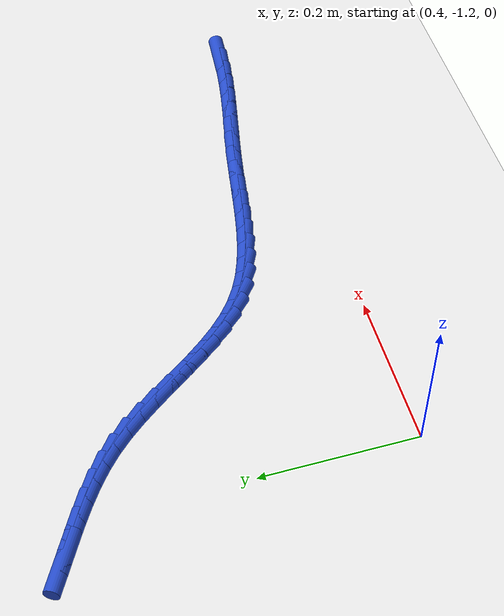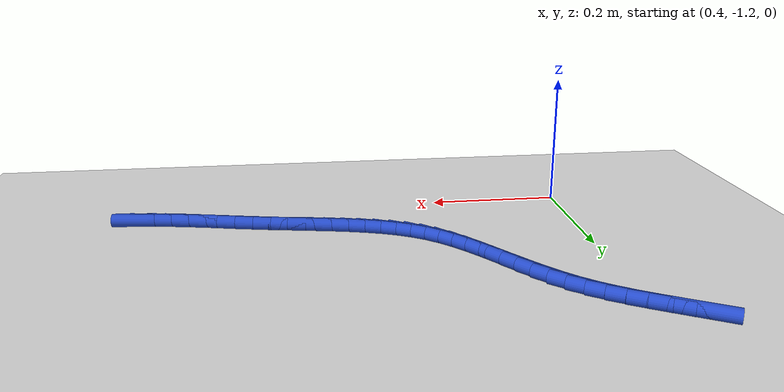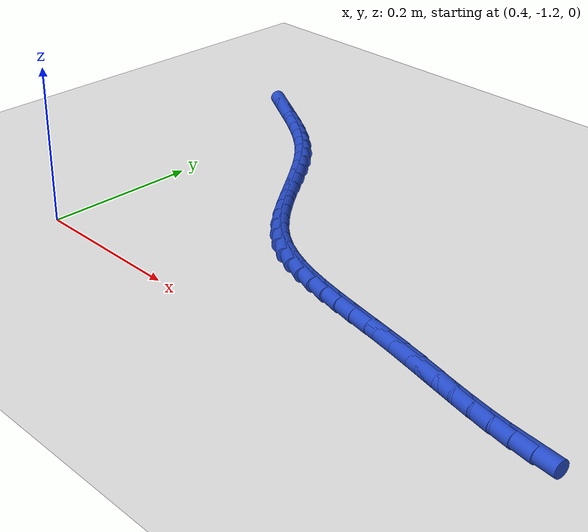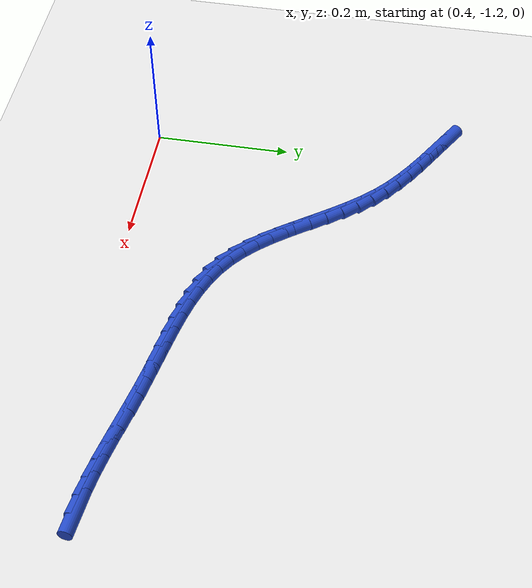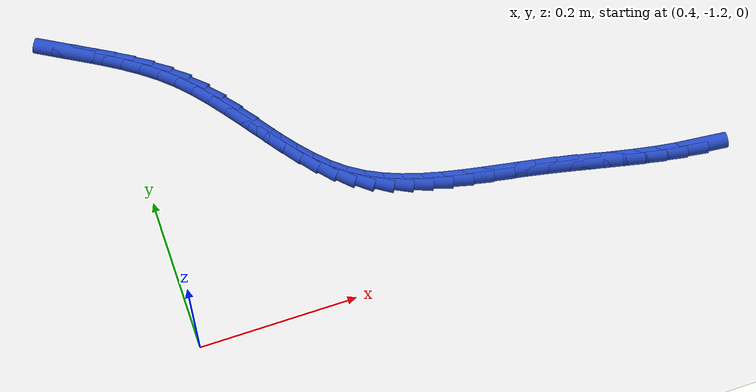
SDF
<sdf version="1.6">
 <world name="default">
  <model name="ground_plane">
   <static>1</static>
   <link name="link">
    <collision name="collision">
     <geometry><plane><normal>0 0 1</normal><size>100 100</size></plane></geometry>
     <surface><friction><ode><mu>100</mu><mu2>50</mu2></ode></friction></surface>
    </collision>
    <visual name="visual">
     <cast_shadows>0</cast_shadows>
     <geometry><plane><normal>0 0 1</normal><size>100 100</size></plane></geometry>
     <material>
      <script><uri>file://media/materials/scripts/gazebo.material</uri><name>Gazebo/WhiteGlow</name></script>
     </material>
    </visual>
   </link>
  </model>
  <model name="line">
   <link name="link_202">
    <pose>1.064997203295246 -1.1486702254336056 0.01 0 1.57 -0.09997851817522463</pose>
    <collision name="collision">
     <geometry><cylinder><radius>0.01</radius><length>0.08</length></cylinder></geometry>
    </collision>
    <visual name="visual">
     <material>
      <script><name>Gazebo/Blue</name><uri>file://media/materials/scripts/gazebo.material</uri></script>
     </material>
     <geometry><cylinder><radius>0.01</radius><length>0.08</length></cylinder></geometry>
    </visual>
   </link>
   <link name="link_203">
    <pose>1.0393894559686363 -1.1461014361405804 0.01 0 1.57 -0.14786104975516057</pose>
    <collision name="collision">
     <geometry><cylinder><radius>0.01</radius><length>0.08</length></cylinder></geometry>
    </collision>
    <visual name="visual">
     <material>
      <script><name>Gazebo/Blue</name><uri>file://media/materials/scripts/gazebo.material</uri></script>
     </material>
     <geometry><cylinder><radius>0.01</radius><length>0.08</length></cylinder></geometry>
    </visual>
   </link>
   <link name="link_204">
    <pose>1.0132505481544405 -1.1422080951218512 0.01 0 1.57 -0.18242461845466035</pose>
    <collision name="collision">
     <geometry><cylinder><radius>0.01</radius><length>0.08</length></cylinder></geometry>
    </collision>
    <visual name="visual">
     <material>
      <script><name>Gazebo/Blue</name><uri>file://media/materials/scripts/gazebo.material</uri></script>
     </material>
     <geometry><cylinder><radius>0.01</radius><length>0.08</length></cylinder></geometry>
    </visual>
   </link>
   <link name="link_205">
    <pose>0.9866940864905475 -1.1373090774031105 0.01 0 1.57 -0.20503501670263202</pose>
    <collision name="collision">
     <geometry><cylinder><radius>0.01</radius><length>0.08</length></cylinder></geometry>
    </collision>
    <visual name="visual">
     <material>
      <script><name>Gazebo/Blue</name><uri>file://media/materials/scripts/gazebo.material</uri></script>
     </material>
     <geometry><cylinder><radius>0.01</radius><length>0.08</length></cylinder></geometry>
    </visual>
   </link>
   <link name="link_206">
    <pose>0.9598336776148471 -1.1317232580100511 0.01 0 1.57 -0.21664131733712658</pose>
    <collision name="collision">
     <geometry><cylinder><radius>0.01</radius><length>0.08</length></cylinder></geometry>
    </collision>
    <visual name="visual">
     <material>
      <script><name>Gazebo/Blue</name><uri>file://media/materials/scripts/gazebo.material</uri></script>
     </material>
     <geometry><cylinder><radius>0.01</radius><length>0.08</length></cylinder></geometry>
    </visual>
   </link>
   <link name="link_207">
    <pose>0.9327829281652276 -1.125769511968366 0.01 0 1.57 -0.217771873512077</pose>
    <collision name="collision">
     <geometry><cylinder><radius>0.01</radius><length>0.08</length></cylinder></geometry>
    </collision>
    <visual name="visual">
     <material>
      <script><name>Gazebo/Blue</name><uri>file://media/materials/scripts/gazebo.material</uri></script>
     </material>
     <geometry><cylinder><radius>0.01</radius><length>0.08</length></cylinder></geometry>
    </visual>
   </link>
   <link name="link_208">
    <pose>0.905655444779579 -1.119766714303747 0.01 0 1.57 -0.2085453557223308</pose>
    <collision name="collision">
     <geometry><cylinder><radius>0.01</radius><length>0.08</length></cylinder></geometry>
    </collision>
    <visual name="visual">
     <material>
      <script><name>Gazebo/Blue</name><uri>file://media/materials/scripts/gazebo.material</uri></script>
     </material>
     <geometry><cylinder><radius>0.01</radius><length>0.08</length></cylinder></geometry>
    </visual>
   </link>
   <link name="link_209">
    <pose>0.87856483409579 -1.1140337400418878 0.01 0 1.57 -0.19044571846766364</pose>
    <collision name="collision">
     <geometry><cylinder><radius>0.01</radius><length>0.08</length></cylinder></geometry>
    </collision>
    <visual name="visual">
     <material>
      <script><name>Gazebo/Blue</name><uri>file://media/materials/scripts/gazebo.material</uri></script>
     </material>
     <geometry><cylinder><radius>0.01</radius><length>0.08</length></cylinder></geometry>
    </visual>
   </link>
   <link name="link_210">
    <pose>0.8516263802802777 -1.1088404888448071 0.01 0 1.57 -0.177304961467923</pose>
    <collision name="collision">
     <geometry><cylinder><radius>0.01</radius><length>0.08</length></cylinder></geometry>
    </collision>
    <visual name="visual">
     <material>
      <script><name>Gazebo/Blue</name><uri>file://media/materials/scripts/gazebo.material</uri></script>
     </material>
     <geometry><cylinder><radius>0.01</radius><length>0.08</length></cylinder></geometry>
    </visual>
   </link>
   <link name="link_211">
    <pose>0.8249688303572514 -1.1040638128967928 0.01 0 1.57 -0.17620624275474675</pose>
    <collision name="collision">
     <geometry><cylinder><radius>0.01</radius><length>0.08</length></cylinder></geometry>
    </collision>
    <visual name="visual">
     <material>
      <script><name>Gazebo/Blue</name><uri>file://media/materials/scripts/gazebo.material</uri></script>
     </material>
     <geometry><cylinder><radius>0.01</radius><length>0.08</length></cylinder></geometry>
    </visual>
   </link>
   <link name="link_212">
    <pose>0.7987274088737338 -1.0993914534191045 0.01 0 1.57 -0.18777712558698403</pose>
    <collision name="collision">
     <geometry><cylinder><radius>0.01</radius><length>0.08</length></cylinder></geometry>
    </collision>
    <visual name="visual">
     <material>
      <script><name>Gazebo/Blue</name><uri>file://media/materials/scripts/gazebo.material</uri></script>
     </material>
     <geometry><cylinder><radius>0.01</radius><length>0.08</length></cylinder></geometry>
    </visual>
   </link>
   <link name="link_213">
    <pose>0.7730373817332021 -1.0945099442332067 0.01 0 1.57 -0.21286161401542328</pose>
    <collision name="collision">
     <geometry><cylinder><radius>0.01</radius><length>0.08</length></cylinder></geometry>
    </collision>
    <visual name="visual">
     <material>
      <script><name>Gazebo/Blue</name><uri>file://media/materials/scripts/gazebo.material</uri></script>
     </material>
     <geometry><cylinder><radius>0.01</radius><length>0.08</length></cylinder></geometry>
    </visual>
   </link>
   <link name="link_214">
    <pose>0.7480340148391379 -1.089105819160567 0.01 0 1.57 -0.2525478913105486</pose>
    <collision name="collision">
     <geometry><cylinder><radius>0.01</radius><length>0.08</length></cylinder></geometry>
    </collision>
    <visual name="visual">
     <material>
      <script><name>Gazebo/Blue</name><uri>file://media/materials/scripts/gazebo.material</uri></script>
     </material>
     <geometry><cylinder><radius>0.01</radius><length>0.08</length></cylinder></geometry>
    </visual>
   </link>
   <link name="link_215">
    <pose>0.7238525740950195 -1.0828656120226494 0.01 0 1.57 -0.30806144975431227</pose>
    <collision name="collision">
     <geometry><cylinder><radius>0.01</radius><length>0.08</length></cylinder></geometry>
    </collision>
    <visual name="visual">
     <material>
      <script><name>Gazebo/Blue</name><uri>file://media/materials/scripts/gazebo.material</uri></script>
     </material>
     <geometry><cylinder><radius>0.01</radius><length>0.08</length></cylinder></geometry>
    </visual>
   </link>
   <link name="link_216">
    <pose>0.7006283254043254 -1.0754758566409208 0.01 0 1.57 -0.3805084614332146</pose>
    <collision name="collision">
     <geometry><cylinder><radius>0.01</radius><length>0.08</length></cylinder></geometry>
    </collision>
    <visual name="visual">
     <material>
      <script><name>Gazebo/Blue</name><uri>file://media/materials/scripts/gazebo.material</uri></script>
     </material>
     <geometry><cylinder><radius>0.01</radius><length>0.08</length></cylinder></geometry>
    </visual>
   </link>
   <link name="link_217">
    <pose>0.6784965346705366 -1.0666230868368474 0.01 0 1.57 -0.47040669023186193</pose>
    <collision name="collision">
     <geometry><cylinder><radius>0.01</radius><length>0.08</length></cylinder></geometry>
    </collision>
    <visual name="visual">
     <material>
      <script><name>Gazebo/Blue</name><uri>file://media/materials/scripts/gazebo.material</uri></script>
     </material>
     <geometry><cylinder><radius>0.01</radius><length>0.08</length></cylinder></geometry>
    </visual>
   </link>
   <link name="link_218">
    <pose>0.6575924677971309 -1.0559938364318937 0.01 0 1.57 -0.5770044176378986</pose>
    <collision name="collision">
     <geometry><cylinder><radius>0.01</radius><length>0.08</length></cylinder></geometry>
    </collision>
    <visual name="visual">
     <material>
      <script><name>Gazebo/Blue</name><uri>file://media/materials/scripts/gazebo.material</uri></script>
     </material>
     <geometry><cylinder><radius>0.01</radius><length>0.08</length></cylinder></geometry>
    </visual>
   </link>
   <link name="link_219">
    <pose>0.6380513906875891 -1.0432746392475274 0.01 0 1.57 -0.6918846311198411</pose>
    <collision name="collision">
     <geometry><cylinder><radius>0.01</radius><length>0.08</length></cylinder></geometry>
    </collision>
    <visual name="visual">
     <material>
      <script><name>Gazebo/Blue</name><uri>file://media/materials/scripts/gazebo.material</uri></script>
     </material>
     <geometry><cylinder><radius>0.01</radius><length>0.08</length></cylinder></geometry>
    </visual>
   </link>
   <link name="link_220">
    <pose>0.6199400557800224 -1.0282692271503657 0.01 0 1.57 -0.7888264944657875</pose>
    <collision name="collision">
     <geometry><cylinder><radius>0.01</radius><length>0.08</length></cylinder></geometry>
    </collision>
    <visual name="visual">
     <material>
      <script><name>Gazebo/Blue</name><uri>file://media/materials/scripts/gazebo.material</uri></script>
     </material>
     <geometry><cylinder><radius>0.01</radius><length>0.08</length></cylinder></geometry>
    </visual>
   </link>
   <link name="link_221">
    <pose>0.6030460066379327 -1.0112589422712088 0.01 0 1.57 -0.86195177397004</pose>
    <collision name="collision">
     <geometry><cylinder><radius>0.01</radius><length>0.08</length></cylinder></geometry>
    </collision>
    <visual name="visual">
     <material>
      <script><name>Gazebo/Blue</name><uri>file://media/materials/scripts/gazebo.material</uri></script>
     </material>
     <geometry><cylinder><radius>0.01</radius><length>0.08</length></cylinder></geometry>
    </visual>
   </link>
   <link name="link_222">
    <pose>0.5870856717035621 -0.9926467751372317 0.01 0 1.57 -0.9128556750648733</pose>
    <collision name="collision">
     <geometry><cylinder><radius>0.01</radius><length>0.08</length></cylinder></geometry>
    </collision>
    <visual name="visual">
     <material>
      <script><name>Gazebo/Blue</name><uri>file://media/materials/scripts/gazebo.material</uri></script>
     </material>
     <geometry><cylinder><radius>0.01</radius><length>0.08</length></cylinder></geometry>
    </visual>
   </link>
   <link name="link_223">
    <pose>0.5717754794024238 -0.9728357163042313 0.01 0 1.57 -0.9433744215359259</pose>
    <collision name="collision">
     <geometry><cylinder><radius>0.01</radius><length>0.08</length></cylinder></geometry>
    </collision>
    <visual name="visual">
     <material>
      <script><name>Gazebo/Blue</name><uri>file://media/materials/scripts/gazebo.material</uri></script>
     </material>
     <geometry><cylinder><radius>0.01</radius><length>0.08</length></cylinder></geometry>
    </visual>
   </link>
   <link name="link_224">
    <pose>0.5568318581600297 -0.9522287563280034 0.01 0 1.57 -0.9549525547675444</pose>
    <collision name="collision">
     <geometry><cylinder><radius>0.01</radius><length>0.08</length></cylinder></geometry>
    </collision>
    <visual name="visual">
     <material>
      <script><name>Gazebo/Blue</name><uri>file://media/materials/scripts/gazebo.material</uri></script>
     </material>
     <geometry><cylinder><radius>0.01</radius><length>0.08</length></cylinder></geometry>
    </visual>
   </link>
   <link name="link_225">
    <pose>0.5419712364018927 -0.9312288857643446 0.01 0 1.57 -0.9483896455470824</pose>
    <collision name="collision">
     <geometry><cylinder><radius>0.01</radius><length>0.08</length></cylinder></geometry>
    </collision>
    <visual name="visual">
     <material>
      <script><name>Gazebo/Blue</name><uri>file://media/materials/scripts/gazebo.material</uri></script>
     </material>
     <geometry><cylinder><radius>0.01</radius><length>0.08</length></cylinder></geometry>
    </visual>
   </link>
   <link name="link_226">
    <pose>0.5269100425535249 -0.9102390951690509 0.01 0 1.57 -0.9237960875910839</pose>
    <collision name="collision">
     <geometry><cylinder><radius>0.01</radius><length>0.08</length></cylinder></geometry>
    </collision>
    <visual name="visual">
     <material>
      <script><name>Gazebo/Blue</name><uri>file://media/materials/scripts/gazebo.material</uri></script>
     </material>
     <geometry><cylinder><radius>0.01</radius><length>0.08</length></cylinder></geometry>
    </visual>
   </link>
   <link name="link_227">
    <pose>0.5113647050404383 -0.8896623750979173 0.01 0 1.57 -0.880679923737623</pose>
    <collision name="collision">
     <geometry><cylinder><radius>0.01</radius><length>0.08</length></cylinder></geometry>
    </collision>
    <visual name="visual">
     <material>
      <script><name>Gazebo/Blue</name><uri>file://media/materials/scripts/gazebo.material</uri></script>
     </material>
     <geometry><cylinder><radius>0.01</radius><length>0.08</length></cylinder></geometry>
    </visual>
   </link>
   <link name="link_228">
    <pose>0.495051652288146 -0.8699017161067415 0.01 0 1.57 -0.8181739651496286</pose>
    <collision name="collision">
     <geometry><cylinder><radius>0.01</radius><length>0.08</length></cylinder></geometry>
    </collision>
    <visual name="visual">
     <material>
      <script><name>Gazebo/Blue</name><uri>file://media/materials/scripts/gazebo.material</uri></script>
     </material>
     <geometry><cylinder><radius>0.01</radius><length>0.08</length></cylinder></geometry>
    </visual>
   </link>
   <link name="link_229">
    <pose>0.4776873127221597 -0.8513601087513184 0.01 0 1.57 -0.7383099681632178</pose>
    <collision name="collision">
     <geometry><cylinder><radius>0.01</radius><length>0.08</length></cylinder></geometry>
    </collision>
    <visual name="visual">
     <material>
      <script><name>Gazebo/Blue</name><uri>file://media/materials/scripts/gazebo.material</uri></script>
     </material>
     <geometry><cylinder><radius>0.01</radius><length>0.08</length></cylinder></geometry>
    </visual>
   </link>
   <link name="link_230">
    <pose>0.45903216382678963 -0.83438401207385 0.01 0 1.57 -0.6632486061188599</pose>
    <collision name="collision">
     <geometry><cylinder><radius>0.01</radius><length>0.08</length></cylinder></geometry>
    </collision>
    <visual name="visual">
     <material>
      <script><name>Gazebo/Blue</name><uri>file://media/materials/scripts/gazebo.material</uri></script>
     </material>
     <geometry><cylinder><radius>0.01</radius><length>0.08</length></cylinder></geometry>
    </visual>
   </link>
   <link name="link_231">
    <pose>0.4391892329673721 -0.8188802647526755 0.01 0 1.57 -0.6040180845902038</pose>
    <collision name="collision">
     <geometry><cylinder><radius>0.01</radius><length>0.08</length></cylinder></geometry>
    </collision>
    <visual name="visual">
     <material>
      <script><name>Gazebo/Blue</name><uri>file://media/materials/scripts/gazebo.material</uri></script>
     </material>
     <geometry><cylinder><radius>0.01</radius><length>0.08</length></cylinder></geometry>
    </visual>
   </link>
   <link name="link_232">
    <pose>0.4184219932843569 -0.8045497931773219 0.01 0 1.57 -0.560793590809492</pose>
    <collision name="collision">
     <geometry><cylinder><radius>0.01</radius><length>0.08</length></cylinder></geometry>
    </collision>
    <visual name="visual">
     <material>
      <script><name>Gazebo/Blue</name><uri>file://media/materials/scripts/gazebo.material</uri></script>
     </material>
     <geometry><cylinder><radius>0.01</radius><length>0.08</length></cylinder></geometry>
    </visual>
   </link>
   <link name="link_233">
    <pose>0.3969948352933013 -0.7910923463999359 0.01 0 1.57 -0.533349774660998</pose>
    <collision name="collision">
     <geometry><cylinder><radius>0.01</radius><length>0.08</length></cylinder></geometry>
    </collision>
    <visual name="visual">
     <material>
      <script><name>Gazebo/Blue</name><uri>file://media/materials/scripts/gazebo.material</uri></script>
     </material>
     <geometry><cylinder><radius>0.01</radius><length>0.08</length></cylinder></geometry>
    </visual>
   </link>
   <link name="link_234">
    <pose>0.37517214950976485 -0.7782076734726656 0.01 0 1.57 -0.5214474309492495</pose>
    <collision name="collision">
     <geometry><cylinder><radius>0.01</radius><length>0.08</length></cylinder></geometry>
    </collision>
    <visual name="visual">
     <material>
      <script><name>Gazebo/Blue</name><uri>file://media/materials/scripts/gazebo.material</uri></script>
     </material>
     <geometry><cylinder><radius>0.01</radius><length>0.08</length></cylinder></geometry>
    </visual>
   </link>
   <link name="link_235">
    <pose>0.35321832644930484 -0.7655955234476581 0.01 0 1.57 -0.525033142133949</pose>
    <collision name="collision">
     <geometry><cylinder><radius>0.01</radius><length>0.08</length></cylinder></geometry>
    </collision>
    <visual name="visual">
     <material>
      <script><name>Gazebo/Blue</name><uri>file://media/materials/scripts/gazebo.material</uri></script>
     </material>
     <geometry><cylinder><radius>0.01</radius><length>0.08</length></cylinder></geometry>
    </visual>
   </link>
  </model>
 </world>
</sdf>
